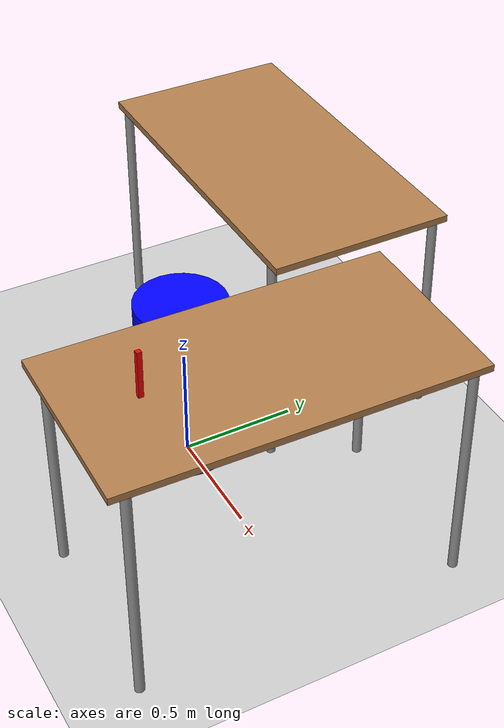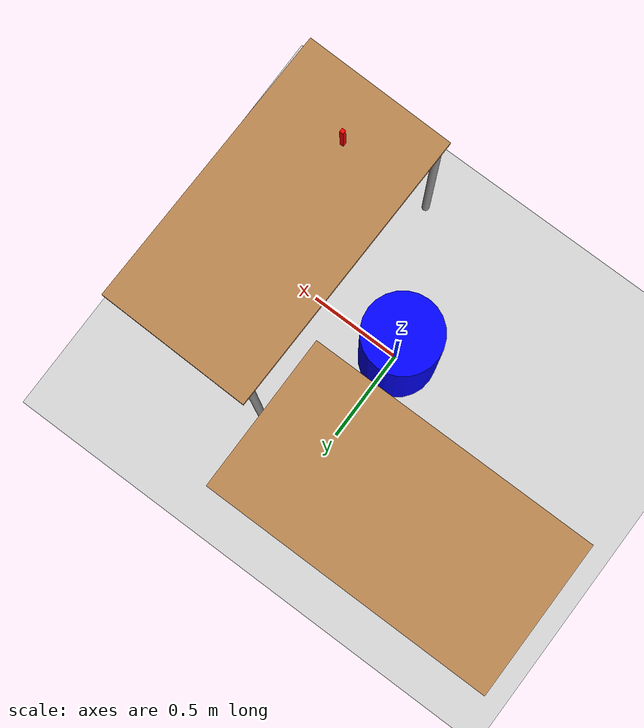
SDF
<sdf version="1.7">
 <world name="default">
  <light name="sun" type="directional">
   <pose>0 0 10 0 -0 0</pose>
   <diffuse>0.8 0.8 0.8 1</diffuse>
   <specular>0.2 0.2 0.2 1</specular>
   <attenuation>
    <range>1000</range>
    <constant>0.9</constant>
    <linear>0.01</linear>
    <quadratic>0.001</quadratic>
   </attenuation>
   <direction>-0.5 0.1 -0.9</direction>
   <spot><inner_angle>0</inner_angle><outer_angle>0</outer_angle><falloff>0</falloff></spot>
  </light>
  <model name="ground_plane">
   <static>1</static>
   <link name="link">
    <collision name="collision">
     <geometry><plane><normal>0 0 1</normal><size>100 100</size></plane></geometry>
     <surface><friction><ode><mu>100</mu><mu2>50</mu2></ode></friction></surface>
    </collision>
    <visual name="visual">
     <cast_shadows>0</cast_shadows>
     <geometry><plane><normal>0 0 1</normal><size>100 100</size></plane></geometry>
     <material>
      <script><uri>file://media/materials/scripts/gazebo.material</uri><name>Gazebo/Grey</name></script>
     </material>
    </visual>
   </link>
  </model>
  <gravity>0 0 -9.8</gravity>
  <magnetic_field>6e-06 2.3e-05 -4.2e-05</magnetic_field>
  <atmosphere type="adiabatic"/>
  <physics type="ode">
   <max_step_size>0.001</max_step_size>
   <real_time_factor>1</real_time_factor>
   <real_time_update_rate>1000</real_time_update_rate>
  </physics>
  <scene><ambient>0.4 0.4 0.4 1</ambient><background>0.7 0.7 0.7 1</background><shadows>1</shadows></scene>
  <audio><device>default</device></audio>
  <spherical_coordinates>
   <surface_model>EARTH_WGS84</surface_model>
   <latitude_deg>0</latitude_deg>
   <longitude_deg>0</longitude_deg>
   <elevation>0</elevation>
   <heading_deg>0</heading_deg>
  </spherical_coordinates>
  <model name="basement">
   <link name="link_0">
    <inertial>
     <mass>1</mass>
     <inertia><ixx>0.145833</ixx><ixy>0</ixy><ixz>0</ixz><iyy>0.145833</iyy><iyz>0</iyz><izz>0.125</izz></inertia>
    </inertial>
    <visual name="visual">
     <geometry><cylinder><radius>0.2</radius><length>0.78</length></cylinder></geometry>
     <material>
      <lighting>1</lighting>
      <script><uri>file://media/materials/scripts/gazebo.material</uri><name>Gazebo/Grey</name></script>
      <shader type="pixel"><normal_map>__default__</normal_map></shader>
      <ambient>0 0 1 1</ambient>
      <diffuse>0.7 0.7 0.7 1</diffuse>
      <specular>0.01 0.01 0.01 1</specular>
      <emissive>0 0 0 1</emissive>
     </material>
    </visual>
    <collision name="collision">
     <geometry><cylinder><radius>0.2</radius><length>0.78</length></cylinder></geometry>
     <surface>
      <friction>
       <ode><mu>1</mu><mu2>1</mu2><fdir1>0 0 0</fdir1><slip1>0</slip1><slip2>0</slip2></ode>
       <torsional>
        <coefficient>1</coefficient>
        <patch_radius>0</patch_radius>
        <surface_radius>0</surface_radius>
        <use_patch_radius>1</use_patch_radius>
        <ode><slip>0</slip></ode>
       </torsional>
      </friction>
      <bounce><restitution_coefficient>0</restitution_coefficient><threshold>1e+06</threshold></bounce>
      <contact>
       <collide_without_contact>0</collide_without_contact>
       <collide_without_contact_bitmask>1</collide_without_contact_bitmask>
       <collide_bitmask>1</collide_bitmask>
       <ode>
        <soft_cfm>0</soft_cfm>
        <soft_erp>0.2</soft_erp>
        <kp>1e+13</kp>
        <kd>1</kd>
        <max_vel>0.01</max_vel>
        <min_depth>0</min_depth>
       </ode>
       <bullet>
        <split_impulse>1</split_impulse>
        <split_impulse_penetration_threshold>-0.01</split_impulse_penetration_threshold>
        <soft_cfm>0</soft_cfm>
        <soft_erp>0.2</soft_erp>
        <kp>1e+13</kp>
        <kd>1</kd>
       </bullet>
      </contact>
     </surface>
    </collision>
   </link>
   <static>0</static>
   <pose>-0.012938 -0.000635 0.389996 -0 -0 -2.6e-05</pose>
  </model>
  <model name="table">
   <static>1</static>
   <link name="link">
    <collision name="surface">
     <pose>0 0 1 0 -0 0</pose>
     <geometry><box><size>1.5 0.8 0.03</size></box></geometry>
     <surface><friction><ode><mu>0.6</mu><mu2>0.6</mu2></ode></friction></surface>
    </collision>
    <visual name="visual1">
     <pose>0 0 1 0 -0 0</pose>
     <geometry><box><size>1.5 0.8 0.03</size></box></geometry>
     <material>
      <script><uri>file://media/materials/scripts/gazebo.material</uri><name>Gazebo/Wood</name></script>
     </material>
    </visual>
    <collision name="front_left_leg">
     <pose>0.68 0.38 0.5 0 -0 0</pose>
     <geometry><cylinder><radius>0.02</radius><length>1</length></cylinder></geometry>
    </collision>
    <visual name="front_left_leg">
     <pose>0.68 0.38 0.5 0 -0 0</pose>
     <geometry><cylinder><radius>0.02</radius><length>1</length></cylinder></geometry>
     <material>
      <script><uri>file://media/materials/scripts/gazebo.material</uri><name>Gazebo/Grey</name></script>
     </material>
    </visual>
    <collision name="front_right_leg">
     <pose>0.68 -0.38 0.5 0 -0 0</pose>
     <geometry><cylinder><radius>0.02</radius><length>1</length></cylinder></geometry>
    </collision>
    <visual name="front_right_leg">
     <pose>0.68 -0.38 0.5 0 -0 0</pose>
     <geometry><cylinder><radius>0.02</radius><length>1</length></cylinder></geometry>
     <material>
      <script><uri>file://media/materials/scripts/gazebo.material</uri><name>Gazebo/Grey</name></script>
     </material>
    </visual>
    <collision name="back_right_leg">
     <pose>-0.68 -0.38 0.5 0 -0 0</pose>
     <geometry><cylinder><radius>0.02</radius><length>1</length></cylinder></geometry>
    </collision>
    <visual name="back_right_leg">
     <pose>-0.68 -0.38 0.5 0 -0 0</pose>
     <geometry><cylinder><radius>0.02</radius><length>1</length></cylinder></geometry>
     <material>
      <script><uri>file://media/materials/scripts/gazebo.material</uri><name>Gazebo/Grey</name></script>
     </material>
    </visual>
    <collision name="back_left_leg">
     <pose>-0.68 0.38 0.5 0 -0 0</pose>
     <geometry><cylinder><radius>0.02</radius><length>1</length></cylinder></geometry>
    </collision>
    <visual name="back_left_leg">
     <pose>-0.68 0.38 0.5 0 -0 0</pose>
     <geometry><cylinder><radius>0.02</radius><length>1</length></cylinder></geometry>
     <material>
      <script><uri>file://media/materials/scripts/gazebo.material</uri><name>Gazebo/Grey</name></script>
     </material>
    </visual>
   </link>
   <pose>-0.489994 0.688645 0 0 -0 0</pose>
  </model>
  <model name="table_0">
   <static>1</static>
   <link name="link">
    <collision name="surface">
     <pose>0 0 1 0 -0 0</pose>
     <geometry><box><size>1.5 0.8 0.03</size></box></geometry>
     <surface><friction><ode><mu>0.6</mu><mu2>0.6</mu2></ode></friction></surface>
    </collision>
    <visual name="visual1">
     <pose>0 0 1 0 -0 0</pose>
     <geometry><box><size>1.5 0.8 0.03</size></box></geometry>
     <material>
      <script><uri>file://media/materials/scripts/gazebo.material</uri><name>Gazebo/Wood</name></script>
     </material>
    </visual>
    <collision name="front_left_leg">
     <pose>0.68 0.38 0.5 0 -0 0</pose>
     <geometry><cylinder><radius>0.02</radius><length>1</length></cylinder></geometry>
    </collision>
    <visual name="front_left_leg">
     <pose>0.68 0.38 0.5 0 -0 0</pose>
     <geometry><cylinder><radius>0.02</radius><length>1</length></cylinder></geometry>
     <material>
      <script><uri>file://media/materials/scripts/gazebo.material</uri><name>Gazebo/Grey</name></script>
     </material>
    </visual>
    <collision name="front_right_leg">
     <pose>0.68 -0.38 0.5 0 -0 0</pose>
     <geometry><cylinder><radius>0.02</radius><length>1</length></cylinder></geometry>
    </collision>
    <visual name="front_right_leg">
     <pose>0.68 -0.38 0.5 0 -0 0</pose>
     <geometry><cylinder><radius>0.02</radius><length>1</length></cylinder></geometry>
     <material>
      <script><uri>file://media/materials/scripts/gazebo.material</uri><name>Gazebo/Grey</name></script>
     </material>
    </visual>
    <collision name="back_right_leg">
     <pose>-0.68 -0.38 0.5 0 -0 0</pose>
     <geometry><cylinder><radius>0.02</radius><length>1</length></cylinder></geometry>
    </collision>
    <visual name="back_right_leg">
     <pose>-0.68 -0.38 0.5 0 -0 0</pose>
     <geometry><cylinder><radius>0.02</radius><length>1</length></cylinder></geometry>
     <material>
      <script><uri>file://media/materials/scripts/gazebo.material</uri><name>Gazebo/Grey</name></script>
     </material>
    </visual>
    <collision name="back_left_leg">
     <pose>-0.68 0.38 0.5 0 -0 0</pose>
     <geometry><cylinder><radius>0.02</radius><length>1</length></cylinder></geometry>
    </collision>
    <visual name="back_left_leg">
     <pose>-0.68 0.38 0.5 0 -0 0</pose>
     <geometry><cylinder><radius>0.02</radius><length>1</length></cylinder></geometry>
     <material>
      <script><uri>file://media/materials/scripts/gazebo.material</uri><name>Gazebo/Grey</name></script>
     </material>
    </visual>
   </link>
   <pose>0.731014 -0.047935 0 0 -0 1.55129</pose>
  </model>
  <model name="red_cube">
   <link name="link_1">
    <inertial>
     <mass>1</mass>
     <inertia>
      <ixx>0.166667</ixx>
      <ixy>0</ixy>
      <ixz>0</ixz>
      <iyy>0.166667</iyy>
      <iyz>0</iyz>
      <izz>0.166667</izz>
     </inertia>
    </inertial>
    <visual name="visual">
     <geometry><box><size>0.02 0.02 0.2</size></box></geometry>
     <material>
      <lighting>1</lighting>
      <script><uri>file://media/materials/scripts/gazebo.material</uri><name>Gazebo/Grey</name></script>
      <shader type="pixel"><normal_map>__default__</normal_map></shader>
      <ambient>1 0 0 1</ambient>
      <diffuse>0.7 0.7 0.7 1</diffuse>
      <specular>0.01 0.01 0.01 1</specular>
      <emissive>0 0 0 1</emissive>
     </material>
    </visual>
    <collision name="collision">
     <geometry><box><size>0.02 0.02 0.2</size></box></geometry>
     <surface>
      <friction>
       <ode><mu>1</mu><mu2>1</mu2><fdir1>0 0 0</fdir1><slip1>0</slip1><slip2>0</slip2></ode>
       <torsional>
        <coefficient>1</coefficient>
        <patch_radius>0</patch_radius>
        <surface_radius>0</surface_radius>
        <use_patch_radius>1</use_patch_radius>
        <ode><slip>0</slip></ode>
       </torsional>
      </friction>
      <bounce><restitution_coefficient>0</restitution_coefficient><threshold>1e+06</threshold></bounce>
      <contact>
       <collide_without_contact>0</collide_without_contact>
       <collide_without_contact_bitmask>1</collide_without_contact_bitmask>
       <collide_bitmask>1</collide_bitmask>
       <ode>
        <soft_cfm>0</soft_cfm>
        <soft_erp>0.2</soft_erp>
        <kp>1e+13</kp>
        <kd>1</kd>
        <max_vel>0.01</max_vel>
        <min_depth>0</min_depth>
       </ode>
       <bullet>
        <split_impulse>1</split_impulse>
        <split_impulse_penetration_threshold>-0.01</split_impulse_penetration_threshold>
        <soft_cfm>0</soft_cfm>
        <soft_erp>0.2</soft_erp>
        <kp>1e+13</kp>
        <kd>1</kd>
       </bullet>
      </contact>
     </surface>
    </collision>
   </link>
   <static>0</static>
   <pose>0.701428 -0.495601 1.11512 -0.012523 4e-06 0.013769</pose>
  </model>
  <plugin name="gazebo_link_attacher" filename="libgazebo_link_attacher.so"/>
 </world>
</sdf>
